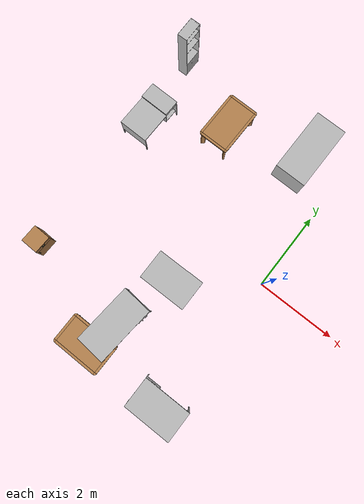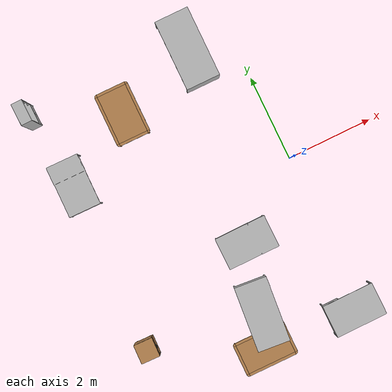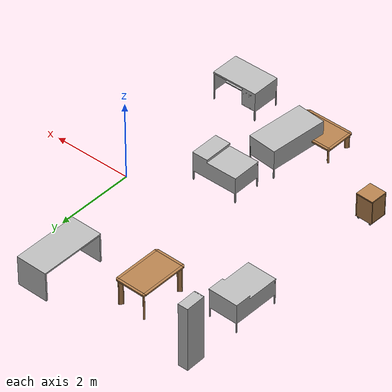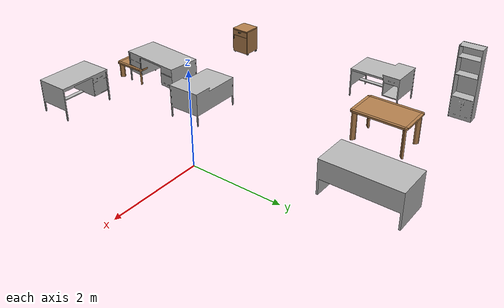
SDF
<sdf version="1.4">
 <world name="default">
  <model name="kitchen_lowtable_1">
   <link name="link">
    <inertial>
     <mass>10</mass>
     <inertia><ixx>1</ixx><ixy>0</ixy><ixz>0</ixz><iyy>1</iyy><iyz>0</iyz><izz>1</izz></inertia>
    </inertial>
    <visual name="center_board">
     <pose>0 0 0.38 0 -0 0</pose>
     <geometry><box><size>0.68 1.13 0.04</size></box></geometry>
     <material>
      <script><uri>model://base_materials/wood/scripts/wood.material</uri><name>base_materials/wood</name></script>
     </material>
    </visual>
    <collision name="collision_center_board">
     <pose>0 0 0.38 0 -0 0</pose>
     <geometry><box><size>0.68 1.13 0.04</size></box></geometry>
    </collision>
    <visual name="front_board">
     <pose>0.37 0 0.38 0 -0 0</pose>
     <geometry><box><size>0.06 1.13 0.04</size></box></geometry>
     <material>
      <script><uri>model://base_materials/wood/scripts/wood.material</uri><name>base_materials/wood</name></script>
     </material>
    </visual>
    <collision name="collision_front_board">
     <pose>0.37 0 0.38 0 -0 0</pose>
     <geometry><box><size>0.06 1.13 0.04</size></box></geometry>
    </collision>
    <visual name="back_board">
     <pose>-0.37 0 0.38 0 -0 0</pose>
     <geometry><box><size>0.06 1.13 0.04</size></box></geometry>
     <material>
      <script><uri>model://base_materials/wood/scripts/wood.material</uri><name>base_materials/wood</name></script>
     </material>
    </visual>
    <collision name="collision_back_board">
     <pose>-0.37 0 0.38 0 -0 0</pose>
     <geometry><box><size>0.06 1.13 0.04</size></box></geometry>
    </collision>
    <visual name="right_board">
     <pose>0 0.595 0.38 0 -0 0</pose>
     <geometry><box><size>0.68 0.06 0.04</size></box></geometry>
     <material>
      <script><uri>model://base_materials/wood/scripts/wood.material</uri><name>base_materials/wood</name></script>
     </material>
    </visual>
    <collision name="collision_right_board">
     <pose>0 0.595 0.38 0 -0 0</pose>
     <geometry><box><size>0.68 0.06 0.04</size></box></geometry>
    </collision>
    <visual name="left_board">
     <pose>0 -0.595 0.38 0 -0 0</pose>
     <geometry><box><size>0.68 0.06 0.04</size></box></geometry>
     <material>
      <script><uri>model://base_materials/wood/scripts/wood.material</uri><name>base_materials/wood</name></script>
     </material>
    </visual>
    <collision name="collision_left_board">
     <pose>0 -0.595 0.38 0 -0 0</pose>
     <geometry><box><size>0.68 0.06 0.04</size></box></geometry>
    </collision>
    <visual name="front_right_corner_board">
     <pose>0.34 0.565 0.38 0 -0 0</pose>
     <geometry><cylinder><radius>0.06</radius><length>0.039</length></cylinder></geometry>
     <material>
      <script><uri>model://base_materials/wood/scripts/wood.material</uri><name>base_materials/wood</name></script>
     </material>
    </visual>
    <collision name="collision_front_right_corner_board">
     <pose>0.34 0.565 0.38 0 -0 0</pose>
     <geometry><cylinder><radius>0.06</radius><length>0.039</length></cylinder></geometry>
    </collision>
    <visual name="front_left_corner_board">
     <pose>0.34 -0.565 0.38 0 -0 0</pose>
     <geometry><cylinder><radius>0.06</radius><length>0.039</length></cylinder></geometry>
     <material>
      <script><uri>model://base_materials/wood/scripts/wood.material</uri><name>base_materials/wood</name></script>
     </material>
    </visual>
    <collision name="collision_front_left_corner_board">
     <pose>0.34 -0.565 0.38 0 -0 0</pose>
     <geometry><cylinder><radius>0.06</radius><length>0.039</length></cylinder></geometry>
    </collision>
    <visual name="front_back_right_corner_board">
     <pose>-0.34 0.565 0.38 0 -0 0</pose>
     <geometry><cylinder><radius>0.06</radius><length>0.039</length></cylinder></geometry>
     <material>
      <script><uri>model://base_materials/wood/scripts/wood.material</uri><name>base_materials/wood</name></script>
     </material>
    </visual>
    <collision name="collision_back_right_corner_board">
     <pose>-0.34 0.565 0.38 0 -0 0</pose>
     <geometry><cylinder><radius>0.06</radius><length>0.039</length></cylinder></geometry>
    </collision>
    <visual name="front_back_left_corner_board">
     <pose>-0.34 -0.565 0.38 0 -0 0</pose>
     <geometry><cylinder><radius>0.06</radius><length>0.039</length></cylinder></geometry>
     <material>
      <script><uri>model://base_materials/wood/scripts/wood.material</uri><name>base_materials/wood</name></script>
     </material>
    </visual>
    <collision name="collision_back_left_corner_board">
     <pose>-0.34 -0.565 0.38 0 -0 0</pose>
     <geometry><cylinder><radius>0.06</radius><length>0.039</length></cylinder></geometry>
    </collision>
    <visual name="front_left_corner_frame1">
     <pose>0.345858 -0.57086 0.18 0 -0 0</pose>
     <geometry><cylinder><radius>0.02</radius><length>0.36</length></cylinder></geometry>
     <material>
      <script><uri>model://base_materials/wood/scripts/wood.material</uri><name>base_materials/wood</name></script>
     </material>
    </visual>
    <collision name="collision_front_left_corner_frame1">
     <pose>0.345858 -0.57086 0.18 0 -0 0</pose>
     <geometry><cylinder><radius>0.02</radius><length>0.36</length></cylinder></geometry>
    </collision>
    <visual name="front_left_corner_frame2">
     <pose>0.317574 -0.54257 0.18 0 -0 0.7854</pose>
     <geometry><box><size>0.04 0.08 0.36</size></box></geometry>
     <material>
      <script><uri>model://base_materials/wood/scripts/wood.material</uri><name>base_materials/wood</name></script>
     </material>
    </visual>
    <collision name="collision_front_left_corner_frame2">
     <pose>0.317574 -0.54257 0.18 0 -0 0.7854</pose>
     <geometry><box><size>0.04 0.08 0.36</size></box></geometry>
    </collision>
    <visual name="front_left_corner_frame3">
     <pose>0.289289 -0.51429 0.18 0 -0 0</pose>
     <geometry><cylinder><radius>0.02</radius><length>0.36</length></cylinder></geometry>
     <material>
      <script><uri>model://base_materials/wood/scripts/wood.material</uri><name>base_materials/wood</name></script>
     </material>
    </visual>
    <collision name="collision_front_left_corner_frame3">
     <pose>0.289289 -0.51429 0.18 0 -0 0</pose>
     <geometry><cylinder><radius>0.02</radius><length>0.36</length></cylinder></geometry>
    </collision>
    <visual name="front_right_corner_frame1">
     <pose>0.345858 0.57086 0.18 0 -0 0</pose>
     <geometry><cylinder><radius>0.02</radius><length>0.36</length></cylinder></geometry>
     <material>
      <script><uri>model://base_materials/wood/scripts/wood.material</uri><name>base_materials/wood</name></script>
     </material>
    </visual>
    <collision name="collision_front_right_corner_frame1">
     <pose>0.345858 0.57086 0.18 0 -0 0</pose>
     <geometry><cylinder><radius>0.02</radius><length>0.36</length></cylinder></geometry>
    </collision>
    <visual name="front_right_corner_frame2">
     <pose>0.317574 0.54257 0.18 0 0 -0.7854</pose>
     <geometry><box><size>0.04 0.08 0.36</size></box></geometry>
     <material>
      <script><uri>model://base_materials/wood/scripts/wood.material</uri><name>base_materials/wood</name></script>
     </material>
    </visual>
    <collision name="collision_front_right_corner_frame2">
     <pose>0.317574 0.54257 0.18 0 0 -0.7854</pose>
     <geometry><box><size>0.04 0.08 0.36</size></box></geometry>
    </collision>
    <visual name="front_right_corner_frame3">
     <pose>0.289289 0.51429 0.18 0 -0 0</pose>
     <geometry><cylinder><radius>0.02</radius><length>0.36</length></cylinder></geometry>
     <material>
      <script><uri>model://base_materials/wood/scripts/wood.material</uri><name>base_materials/wood</name></script>
     </material>
    </visual>
    <collision name="collision_front_right_corner_frame3">
     <pose>0.289289 0.51429 0.18 0 -0 0</pose>
     <geometry><cylinder><radius>0.02</radius><length>0.36</length></cylinder></geometry>
    </collision>
    <visual name="back_left_corner_frame1">
     <pose>-0.345858 -0.57086 0.18 0 -0 0</pose>
     <geometry><cylinder><radius>0.02</radius><length>0.36</length></cylinder></geometry>
     <material>
      <script><uri>model://base_materials/wood/scripts/wood.material</uri><name>base_materials/wood</name></script>
     </material>
    </visual>
    <collision name="collision_back_left_corner_frame1">
     <pose>-0.345858 -0.57086 0.18 0 -0 0</pose>
     <geometry><cylinder><radius>0.02</radius><length>0.36</length></cylinder></geometry>
    </collision>
    <visual name="back_left_corner_frame2">
     <pose>-0.317574 -0.54257 0.18 0 0 -0.7854</pose>
     <geometry><box><size>0.04 0.08 0.36</size></box></geometry>
     <material>
      <script><uri>model://base_materials/wood/scripts/wood.material</uri><name>base_materials/wood</name></script>
     </material>
    </visual>
    <collision name="collision_back_left_corner_frame2">
     <pose>-0.317574 -0.54257 0.18 0 0 -0.7854</pose>
     <geometry><box><size>0.04 0.08 0.36</size></box></geometry>
    </collision>
    <visual name="back_left_corner_frame3">
     <pose>-0.289289 -0.51429 0.18 0 -0 0</pose>
     <geometry><cylinder><radius>0.02</radius><length>0.36</length></cylinder></geometry>
     <material>
      <script><uri>model://base_materials/wood/scripts/wood.material</uri><name>base_materials/wood</name></script>
     </material>
    </visual>
    <collision name="collision_back_left_corner_frame3">
     <pose>-0.289289 -0.51429 0.18 0 -0 0</pose>
     <geometry><cylinder><radius>0.02</radius><length>0.36</length></cylinder></geometry>
    </collision>
    <visual name="back_right_corner_frame1">
     <pose>-0.345858 0.57086 0.18 0 -0 0</pose>
     <geometry><cylinder><radius>0.02</radius><length>0.36</length></cylinder></geometry>
     <material>
      <script><uri>model://base_materials/wood/scripts/wood.material</uri><name>base_materials/wood</name></script>
     </material>
    </visual>
    <collision name="collision_back_right_corner_frame1">
     <pose>-0.345858 0.57086 0.18 0 -0 0</pose>
     <geometry><cylinder><radius>0.02</radius><length>0.36</length></cylinder></geometry>
    </collision>
    <visual name="back_right_corner_frame2">
     <pose>-0.317574 0.54257 0.18 0 -0 0.7854</pose>
     <geometry><box><size>0.04 0.08 0.36</size></box></geometry>
     <material>
      <script><uri>model://base_materials/wood/scripts/wood.material</uri><name>base_materials/wood</name></script>
     </material>
    </visual>
    <collision name="collision_back_right_corner_frame2">
     <pose>-0.317574 0.54257 0.18 0 -0 0.7854</pose>
     <geometry><box><size>0.04 0.08 0.36</size></box></geometry>
    </collision>
    <visual name="back_right_corner_frame3">
     <pose>-0.289289 0.51429 0.18 0 -0 0</pose>
     <geometry><cylinder><radius>0.02</radius><length>0.36</length></cylinder></geometry>
     <material>
      <script><uri>model://base_materials/wood/scripts/wood.material</uri><name>base_materials/wood</name></script>
     </material>
    </visual>
    <collision name="collision_back_right_corner_frame3">
     <pose>-0.289289 0.51429 0.18 0 -0 0</pose>
     <geometry><cylinder><radius>0.02</radius><length>0.36</length></cylinder></geometry>
    </collision>
    <velocity_decay><linear>0</linear><angular>0</angular></velocity_decay>
   </link>
   <static>1</static>
   <pose>-2.36725 -3.58152 0 0 0 -1.5766</pose>
  </model>
  <model name="wagon_1">
   <link name="link">
    <inertial>
     <mass>10</mass>
     <inertia><ixx>1</ixx><ixy>0</ixy><ixz>0</ixz><iyy>1</iyy><iyz>0</iyz><izz>1</izz></inertia>
    </inertial>
    <visual name="left_board">
     <pose>-0.2325 0.01 0.345 0 -0 0</pose>
     <geometry><box><size>0.415 0.02 0.59</size></box></geometry>
     <material>
      <script><uri>model://base_materials/wood/scripts/wood.material</uri><name>base_materials/wood</name></script>
     </material>
    </visual>
    <collision name="collision_left_board">
     <pose>-0.2325 0.01 0.345 0 -0 0</pose>
     <geometry><box><size>0.415 0.02 0.59</size></box></geometry>
    </collision>
    <visual name="right_board">
     <pose>-0.2325 0.4325 0.345 0 -0 0</pose>
     <geometry><box><size>0.415 0.02 0.59</size></box></geometry>
     <material>
      <script><uri>model://base_materials/wood/scripts/wood.material</uri><name>base_materials/wood</name></script>
     </material>
    </visual>
    <collision name="collision_right_board">
     <pose>-0.2325 0.4325 0.345 0 -0 0</pose>
     <geometry><box><size>0.415 0.02 0.59</size></box></geometry>
    </collision>
    <visual name="top_board">
     <pose>-0.22 0.2225 0.655 0 -0 0</pose>
     <geometry><box><size>0.44 0.445 0.03</size></box></geometry>
     <material>
      <script><uri>model://base_materials/wood/scripts/wood.material</uri><name>base_materials/wood</name></script>
     </material>
    </visual>
    <collision name="collision_top_board">
     <pose>-0.22 0.2225 0.655 0 -0 0</pose>
     <geometry><box><size>0.44 0.445 0.03</size></box></geometry>
    </collision>
    <visual name="back_board">
     <pose>-0.425 0.2225 0.345 0 -0 0</pose>
     <geometry><box><size>0.02 0.405 0.59</size></box></geometry>
     <material>
      <script><uri>model://base_materials/wood/scripts/wood.material</uri><name>base_materials/wood</name></script>
     </material>
    </visual>
    <collision name="collision_back_board">
     <pose>-0.425 0.2225 0.345 0 -0 0</pose>
     <geometry><box><size>0.02 0.405 0.59</size></box></geometry>
    </collision>
    <visual name="bottom_board">
     <pose>-0.2325 0.2225 0.06 0 -0 0</pose>
     <geometry><box><size>0.415 0.405 0.02</size></box></geometry>
     <material>
      <script><uri>model://base_materials/wood/scripts/wood.material</uri><name>base_materials/wood</name></script>
     </material>
    </visual>
    <collision name="collision_bottom_board">
     <pose>-0.2325 0.2225 0.06 0 -0 0</pose>
     <geometry><box><size>0.415 0.405 0.02</size></box></geometry>
    </collision>
    <visual name="1st_drawer">
     <pose>-0.0125 0.2225 0.57 0 -0 0</pose>
     <geometry><box><size>0.025 0.445 0.14</size></box></geometry>
     <material>
      <script><uri>model://base_materials/wood/scripts/wood.material</uri><name>base_materials/wood</name></script>
     </material>
    </visual>
    <collision name="collision_1st_drawer">
     <pose>-0.0125 0.2225 0.57 0 -0 0</pose>
     <geometry><box><size>0.025 0.445 0.14</size></box></geometry>
    </collision>
    <visual name="1st_drawer_handle_l1">
     <pose>0.0115 0.1895 0.6 3.14159 1.57079 3.14159</pose>
     <geometry><cylinder><radius>0.007</radius><length>0.023</length></cylinder></geometry>
     <material>
      <ambient>0.18431 0.3098 0.3098 1</ambient>
      <diffuse>0.18431 0.3098 0.3098 1</diffuse>
      <specular>0.1 0.1 0.1 1</specular>
     </material>
    </visual>
    <collision name="collision_1st_drawer_handle_l1">
     <pose>0.0115 0.1895 0.6 3.14159 1.57079 3.14159</pose>
     <geometry><cylinder><radius>0.007</radius><length>0.023</length></cylinder></geometry>
    </collision>
    <visual name="1st_drawer_handle_l2">
     <pose>0.023 0.1895 0.6 0 -0 0</pose>
     <geometry><sphere><radius>0.007</radius></sphere></geometry>
     <material>
      <ambient>0.18431 0.3098 0.3098 1</ambient>
      <diffuse>0.18431 0.3098 0.3098 1</diffuse>
      <specular>0.1 0.1 0.1 1</specular>
     </material>
    </visual>
    <collision name="collision_1st_drawer_handle_l2">
     <pose>0.023 0.1895 0.6 0 -0 0</pose>
     <geometry><sphere><radius>0.007</radius></sphere></geometry>
    </collision>
    <visual name="1st_drawer_handle_r1">
     <pose>0.0115 0.2555 0.6 3.14159 1.57079 3.14159</pose>
     <geometry><cylinder><radius>0.007</radius><length>0.023</length></cylinder></geometry>
     <material>
      <ambient>0.18431 0.3098 0.3098 1</ambient>
      <diffuse>0.18431 0.3098 0.3098 1</diffuse>
      <specular>0.1 0.1 0.1 1</specular>
     </material>
    </visual>
    <collision name="collision_1st_drawer_handle_r1">
     <pose>0.0115 0.2555 0.6 3.14159 1.57079 3.14159</pose>
     <geometry><cylinder><radius>0.007</radius><length>0.023</length></cylinder></geometry>
    </collision>
    <visual name="1st_drawer_handle_r2">
     <pose>0.023 0.2555 0.6 0 -0 0</pose>
     <geometry><sphere><radius>0.007</radius></sphere></geometry>
     <material>
      <ambient>0.18431 0.3098 0.3098 1</ambient>
      <diffuse>0.18431 0.3098 0.3098 1</diffuse>
      <specular>0.1 0.1 0.1 1</specular>
     </material>
    </visual>
    <collision name="collision_1st_drawer_handle_r2">
     <pose>0.023 0.2555 0.6 0 -0 0</pose>
     <geometry><sphere><radius>0.007</radius></sphere></geometry>
    </collision>
    <visual name="1st_drawer_handle_center">
     <pose>0.023 0.2225 0.6 1.5708 -0 0</pose>
     <geometry><cylinder><radius>0.007</radius><length>0.066</length></cylinder></geometry>
     <material>
      <ambient>0.18431 0.3098 0.3098 1</ambient>
      <diffuse>0.18431 0.3098 0.3098 1</diffuse>
      <specular>0.1 0.1 0.1 1</specular>
     </material>
    </visual>
    <collision name="collision_1st_drawer_handle_center">
     <pose>0.023 0.2225 0.6 1.5708 -0 0</pose>
     <geometry><cylinder><radius>0.007</radius><length>0.066</length></cylinder></geometry>
    </collision>
    <visual name="2nd_drawer">
     <pose>-0.0125 0.2225 0.275 0 -0 0</pose>
     <geometry><box><size>0.025 0.445 0.45</size></box></geometry>
     <material>
      <script><uri>model://base_materials/wood/scripts/wood.material</uri><name>base_materials/wood</name></script>
     </material>
    </visual>
    <collision name="collision_2nd_drawer">
     <pose>-0.0125 0.2225 0.275 0 -0 0</pose>
     <geometry><box><size>0.025 0.445 0.45</size></box></geometry>
    </collision>
    <visual name="2nd_drawer_handle_top1">
     <pose>0.0115 0.04 0.47 3.14159 1.57079 3.14159</pose>
     <geometry><cylinder><radius>0.007</radius><length>0.023</length></cylinder></geometry>
     <material>
      <ambient>0.18431 0.3098 0.3098 1</ambient>
      <diffuse>0.18431 0.3098 0.3098 1</diffuse>
      <specular>0.1 0.1 0.1 1</specular>
     </material>
    </visual>
    <collision name="collision_2nd_drawer_handle_top1">
     <pose>0.0115 0.04 0.47 3.14159 1.57079 3.14159</pose>
     <geometry><cylinder><radius>0.007</radius><length>0.023</length></cylinder></geometry>
    </collision>
    <visual name="2nd_drawer_handle_top2">
     <pose>0.023 0.04 0.47 0 -0 0</pose>
     <geometry><sphere><radius>0.007</radius></sphere></geometry>
     <material>
      <ambient>0.18431 0.3098 0.3098 1</ambient>
      <diffuse>0.18431 0.3098 0.3098 1</diffuse>
      <specular>0.1 0.1 0.1 1</specular>
     </material>
    </visual>
    <collision name="2nd_drawer_handle_top2">
     <pose>0.023 0.04 0.47 0 -0 0</pose>
     <geometry><sphere><radius>0.007</radius></sphere></geometry>
    </collision>
    <visual name="2nd_drawer_handle_bottom1">
     <pose>0.0115 0.04 0.404 3.14159 1.57079 3.14159</pose>
     <geometry><cylinder><radius>0.007</radius><length>0.023</length></cylinder></geometry>
     <material>
      <ambient>0.18431 0.3098 0.3098 1</ambient>
      <diffuse>0.18431 0.3098 0.3098 1</diffuse>
      <specular>0.1 0.1 0.1 1</specular>
     </material>
    </visual>
    <collision name="collision_2nd_drawer_handle_bottom1">
     <pose>0.0115 0.04 0.404 3.14159 1.57079 3.14159</pose>
     <geometry><cylinder><radius>0.007</radius><length>0.023</length></cylinder></geometry>
    </collision>
    <visual name="2nd_drawer_handle_bottom2">
     <pose>0.023 0.04 0.404 0 -0 0</pose>
     <geometry><sphere><radius>0.007</radius></sphere></geometry>
     <material>
      <ambient>0.18431 0.3098 0.3098 1</ambient>
      <diffuse>0.18431 0.3098 0.3098 1</diffuse>
      <specular>0.1 0.1 0.1 1</specular>
     </material>
    </visual>
    <collision name="2nd_drawer_handle_bottom2">
     <pose>0.023 0.04 0.404 0 -0 0</pose>
     <geometry><sphere><radius>0.007</radius></sphere></geometry>
    </collision>
    <visual name="2nd_drawer_handle_center">
     <pose>0.023 0.04 0.437 0 -0 0</pose>
     <geometry><cylinder><radius>0.007</radius><length>0.066</length></cylinder></geometry>
     <material>
      <ambient>0.18431 0.3098 0.3098 1</ambient>
      <diffuse>0.18431 0.3098 0.3098 1</diffuse>
      <specular>0.1 0.1 0.1 1</specular>
     </material>
    </visual>
    <collision name="collision_2nd_drawer_handle_center">
     <pose>0.023 0.04 0.437 0 -0 0</pose>
     <geometry><cylinder><radius>0.007</radius><length>0.066</length></cylinder></geometry>
    </collision>
    <visual name="left_front_caster">
     <pose>-0.07 0.025 0.025 3.14159 1.57079 3.14159</pose>
     <geometry><cylinder><radius>0.025</radius><length>0.035</length></cylinder></geometry>
     <material><script><name>Gazebo/Black</name><uri>__default__</uri></script></material>
    </visual>
    <collision name="collision_left_front_caster">
     <pose>-0.07 0.025 0.025 3.14159 1.57079 3.14159</pose>
     <geometry><cylinder><radius>0.025</radius><length>0.035</length></cylinder></geometry>
    </collision>
    <visual name="right_front_caster">
     <pose>-0.07 0.42 0.025 3.14159 1.57079 3.14159</pose>
     <geometry><cylinder><radius>0.025</radius><length>0.035</length></cylinder></geometry>
     <material><script><name>Gazebo/Black</name><uri>__default__</uri></script></material>
    </visual>
    <collision name="collision_right_front_caster">
     <pose>-0.07 0.42 0.025 3.14159 1.57079 3.14159</pose>
     <geometry><cylinder><radius>0.025</radius><length>0.035</length></cylinder></geometry>
    </collision>
    <visual name="left_back_caster">
     <pose>-0.39 0.025 0.025 3.14159 1.57079 3.14159</pose>
     <geometry><cylinder><radius>0.025</radius><length>0.035</length></cylinder></geometry>
     <material><script><name>Gazebo/Black</name><uri>__default__</uri></script></material>
    </visual>
    <collision name="collision_left_back_caster">
     <pose>-0.39 0.025 0.025 3.14159 1.57079 3.14159</pose>
     <geometry><cylinder><radius>0.025</radius><length>0.035</length></cylinder></geometry>
    </collision>
    <visual name="right_back_caster">
     <pose>-0.39 0.42 0.025 3.14159 1.57079 3.14159</pose>
     <geometry><cylinder><radius>0.025</radius><length>0.035</length></cylinder></geometry>
     <material><script><name>Gazebo/Black</name><uri>__default__</uri></script></material>
    </visual>
    <collision name="collision_right_back_caster">
     <pose>-0.39 0.42 0.025 3.14159 1.57079 3.14159</pose>
     <geometry><cylinder><radius>0.025</radius><length>0.035</length></cylinder></geometry>
    </collision>
    <velocity_decay><linear>0</linear><angular>0</angular></velocity_decay>
   </link>
   <static>1</static>
   <pose>-4.52394 -2.6741 0 0 0 -0.030032</pose>
  </model>
  <model name="Table_02_1">
   <link name="link_0">
    <inertial>
     <mass>15</mass>
     <inertia>
      <ixx>0.166667</ixx>
      <ixy>0</ixy>
      <ixz>0</ixz>
      <iyy>0.166667</iyy>
      <iyz>0</iyz>
      <izz>0.166667</izz>
     </inertia>
    </inertial>
    <visual name="visual">
     <geometry><mesh><uri>model://BioRoboticsLab/meshes/Table_02.dae</uri><scale>1 1 1</scale></mesh></geometry>
     <material><lighting>1</lighting><shader type="pixel"/></material>
    </visual>
    <collision name="collision">
     <geometry><mesh><uri>model://BioRoboticsLab/meshes/Table_02.dae</uri><scale>1 1 1</scale></mesh></geometry>
     <surface>
      <friction>
       <ode><mu>1</mu><mu2>1</mu2><fdir1>0 0 0</fdir1><slip1>0</slip1><slip2>0</slip2></ode>
       <torsional>
        <coefficient>1</coefficient>
        <patch_radius>0</patch_radius>
        <surface_radius>0</surface_radius>
        <use_patch_radius>1</use_patch_radius>
        <ode><slip>0</slip></ode>
       </torsional>
      </friction>
      <bounce><restitution_coefficient>0</restitution_coefficient><threshold>1e+06</threshold></bounce>
      <contact>
       <collide_without_contact>0</collide_without_contact>
       <collide_without_contact_bitmask>1</collide_without_contact_bitmask>
       <collide_bitmask>1</collide_bitmask>
       <ode>
        <soft_cfm>0</soft_cfm>
        <soft_erp>0.2</soft_erp>
        <kp>1e+13</kp>
        <kd>1</kd>
        <max_vel>0.01</max_vel>
        <min_depth>0</min_depth>
       </ode>
       <bullet>
        <split_impulse>1</split_impulse>
        <split_impulse_penetration_threshold>-0.01</split_impulse_penetration_threshold>
        <soft_cfm>0</soft_cfm>
        <soft_erp>0.2</soft_erp>
        <kp>1e+13</kp>
        <kd>1</kd>
       </bullet>
      </contact>
     </surface>
    </collision>
   </link>
   <static>1</static>
   <pose>-0.964805 3.15155 0 0 -0 1.56608</pose>
  </model>
  <model name="Desk_03_1">
   <link name="link_0">
    <inertial>
     <mass>25</mass>
     <inertia>
      <ixx>0.166667</ixx>
      <ixy>0</ixy>
      <ixz>0</ixz>
      <iyy>0.166667</iyy>
      <iyz>0</iyz>
      <izz>0.166667</izz>
     </inertia>
    </inertial>
    <visual name="visual">
     <geometry><mesh><uri>model://BioRoboticsLab/meshes/Desk_03.dae</uri><scale>1 1 1</scale></mesh></geometry>
     <material><lighting>1</lighting><shader type="pixel"/></material>
    </visual>
    <collision name="collision">
     <geometry><mesh><uri>model://BioRoboticsLab/meshes/Desk_03.dae</uri><scale>1 1 1</scale></mesh></geometry>
     <surface>
      <friction>
       <ode><mu>1</mu><mu2>1</mu2><fdir1>0 0 0</fdir1><slip1>0</slip1><slip2>0</slip2></ode>
       <torsional>
        <coefficient>1</coefficient>
        <patch_radius>0</patch_radius>
        <surface_radius>0</surface_radius>
        <use_patch_radius>1</use_patch_radius>
        <ode><slip>0</slip></ode>
       </torsional>
      </friction>
      <bounce><restitution_coefficient>0</restitution_coefficient><threshold>1e+06</threshold></bounce>
      <contact>
       <collide_without_contact>0</collide_without_contact>
       <collide_without_contact_bitmask>1</collide_without_contact_bitmask>
       <collide_bitmask>1</collide_bitmask>
       <ode>
        <soft_cfm>0</soft_cfm>
        <soft_erp>0.2</soft_erp>
        <kp>1e+13</kp>
        <kd>1</kd>
        <max_vel>0.01</max_vel>
        <min_depth>0</min_depth>
       </ode>
       <bullet>
        <split_impulse>1</split_impulse>
        <split_impulse_penetration_threshold>-0.01</split_impulse_penetration_threshold>
        <soft_cfm>0</soft_cfm>
        <soft_erp>0.2</soft_erp>
        <kp>1e+13</kp>
        <kd>1</kd>
       </bullet>
      </contact>
     </surface>
    </collision>
   </link>
   <static>1</static>
   <pose>-0.233543 -3.62275 0 0 -0 0.004657</pose>
  </model>
  <model name="Desk_01_1">
   <link name="link_0">
    <inertial>
     <mass>35</mass>
     <inertia>
      <ixx>0.166667</ixx>
      <ixy>0</ixy>
      <ixz>0</ixz>
      <iyy>0.166667</iyy>
      <iyz>0</iyz>
      <izz>0.166667</izz>
     </inertia>
    </inertial>
    <visual name="visual">
     <geometry><mesh><uri>model://BioRoboticsLab/meshes/Desk_01.dae</uri><scale>1 1 1</scale></mesh></geometry>
     <material><lighting>1</lighting><shader type="pixel"/></material>
    </visual>
    <collision name="collision">
     <geometry><mesh><uri>model://BioRoboticsLab/meshes/Desk_01.dae</uri><scale>1 1 1</scale></mesh></geometry>
     <surface>
      <friction>
       <ode><mu>1</mu><mu2>1</mu2><fdir1>0 0 0</fdir1><slip1>0</slip1><slip2>0</slip2></ode>
       <torsional>
        <coefficient>1</coefficient>
        <patch_radius>0</patch_radius>
        <surface_radius>0</surface_radius>
        <use_patch_radius>1</use_patch_radius>
        <ode><slip>0</slip></ode>
       </torsional>
      </friction>
      <bounce><restitution_coefficient>0</restitution_coefficient><threshold>1e+06</threshold></bounce>
      <contact>
       <collide_without_contact>0</collide_without_contact>
       <collide_without_contact_bitmask>1</collide_without_contact_bitmask>
       <collide_bitmask>1</collide_bitmask>
       <ode>
        <soft_cfm>0</soft_cfm>
        <soft_erp>0.2</soft_erp>
        <kp>1e+13</kp>
        <kd>1</kd>
        <max_vel>0.01</max_vel>
        <min_depth>0</min_depth>
       </ode>
       <bullet>
        <split_impulse>1</split_impulse>
        <split_impulse_penetration_threshold>-0.01</split_impulse_penetration_threshold>
        <soft_cfm>0</soft_cfm>
        <soft_erp>0.2</soft_erp>
        <kp>1e+13</kp>
        <kd>1</kd>
       </bullet>
      </contact>
     </surface>
    </collision>
   </link>
   <static>1</static>
   <pose>-2.1 -2.82 0 0 0 -1.66</pose>
  </model>
  <model name="Shelf_02_1">
   <link name="link_0">
    <inertial>
     <mass>12</mass>
     <inertia>
      <ixx>0.166667</ixx>
      <ixy>0</ixy>
      <ixz>0</ixz>
      <iyy>0.166667</iyy>
      <iyz>0</iyz>
      <izz>0.166667</izz>
     </inertia>
    </inertial>
    <visual name="visual">
     <geometry><mesh><uri>model://BioRoboticsLab/meshes/Shelf_02.dae</uri><scale>1 1 1</scale></mesh></geometry>
     <material><lighting>1</lighting><shader type="pixel"/></material>
    </visual>
    <collision name="collision">
     <geometry><mesh><uri>model://BioRoboticsLab/meshes/Shelf_02.dae</uri><scale>1 1 1</scale></mesh></geometry>
     <surface>
      <friction>
       <ode><mu>1</mu><mu2>1</mu2><fdir1>0 0 0</fdir1><slip1>0</slip1><slip2>0</slip2></ode>
       <torsional>
        <coefficient>1</coefficient>
        <patch_radius>0</patch_radius>
        <surface_radius>0</surface_radius>
        <use_patch_radius>1</use_patch_radius>
        <ode><slip>0</slip></ode>
       </torsional>
      </friction>
      <bounce><restitution_coefficient>0</restitution_coefficient><threshold>1e+06</threshold></bounce>
      <contact>
       <collide_without_contact>0</collide_without_contact>
       <collide_without_contact_bitmask>1</collide_without_contact_bitmask>
       <collide_bitmask>1</collide_bitmask>
       <ode>
        <soft_cfm>0</soft_cfm>
        <soft_erp>0.2</soft_erp>
        <kp>1e+13</kp>
        <kd>1</kd>
        <max_vel>0.01</max_vel>
        <min_depth>0</min_depth>
       </ode>
       <bullet>
        <split_impulse>1</split_impulse>
        <split_impulse_penetration_threshold>-0.01</split_impulse_penetration_threshold>
        <soft_cfm>0</soft_cfm>
        <soft_erp>0.2</soft_erp>
        <kp>1e+13</kp>
        <kd>1</kd>
       </bullet>
      </contact>
     </surface>
    </collision>
   </link>
   <static>1</static>
   <pose>-4.82525 3.34686 0 0 0 -1.55713</pose>
  </model>
  <model name="Desk_02_1">
   <link name="link_0">
    <inertial>
     <mass>19</mass>
     <inertia>
      <ixx>0.166667</ixx>
      <ixy>0</ixy>
      <ixz>0</ixz>
      <iyy>0.166667</iyy>
      <iyz>0</iyz>
      <izz>0.166667</izz>
     </inertia>
    </inertial>
    <visual name="visual">
     <geometry><mesh><uri>model://BioRoboticsLab/meshes/Desk_02.dae</uri><scale>1 1 1</scale></mesh></geometry>
     <material><lighting>1</lighting><shader type="pixel"/></material>
    </visual>
    <collision name="collision">
     <geometry><mesh><uri>model://BioRoboticsLab/meshes/Desk_02.dae</uri><scale>1 1 1</scale></mesh></geometry>
     <surface>
      <friction>
       <ode><mu>1</mu><mu2>1</mu2><fdir1>0 0 0</fdir1><slip1>0</slip1><slip2>0</slip2></ode>
       <torsional>
        <coefficient>1</coefficient>
        <patch_radius>0</patch_radius>
        <surface_radius>0</surface_radius>
        <use_patch_radius>1</use_patch_radius>
        <ode><slip>0</slip></ode>
       </torsional>
      </friction>
      <bounce><restitution_coefficient>0</restitution_coefficient><threshold>1e+06</threshold></bounce>
      <contact>
       <collide_without_contact>0</collide_without_contact>
       <collide_without_contact_bitmask>1</collide_without_contact_bitmask>
       <collide_bitmask>1</collide_bitmask>
       <ode>
        <soft_cfm>0</soft_cfm>
        <soft_erp>0.2</soft_erp>
        <kp>1e+13</kp>
        <kd>1</kd>
        <max_vel>0.01</max_vel>
        <min_depth>0</min_depth>
       </ode>
       <bullet>
        <split_impulse>1</split_impulse>
        <split_impulse_penetration_threshold>-0.01</split_impulse_penetration_threshold>
        <soft_cfm>0</soft_cfm>
        <soft_erp>0.2</soft_erp>
        <kp>1e+13</kp>
        <kd>1</kd>
       </bullet>
      </contact>
     </surface>
    </collision>
   </link>
   <static>1</static>
   <pose>-4.60194 1.67796 0 0 0 -1.58401</pose>
  </model>
  <model name="Desk_02_2">
   <link name="link_0">
    <inertial>
     <mass>19</mass>
     <inertia>
      <ixx>0.166667</ixx>
      <ixy>0</ixy>
      <ixz>0</ixz>
      <iyy>0.166667</iyy>
      <iyz>0</iyz>
      <izz>0.166667</izz>
     </inertia>
    </inertial>
    <visual name="visual">
     <geometry><mesh><uri>model://BioRoboticsLab/meshes/Desk_02.dae</uri><scale>1 1 1</scale></mesh></geometry>
     <material><lighting>1</lighting><shader type="pixel"/></material>
    </visual>
    <collision name="collision">
     <geometry><mesh><uri>model://BioRoboticsLab/meshes/Desk_02.dae</uri><scale>1 1 1</scale></mesh></geometry>
     <surface>
      <friction>
       <ode><mu>1</mu><mu2>1</mu2><fdir1>0 0 0</fdir1><slip1>0</slip1><slip2>0</slip2></ode>
       <torsional>
        <coefficient>1</coefficient>
        <patch_radius>0</patch_radius>
        <surface_radius>0</surface_radius>
        <use_patch_radius>1</use_patch_radius>
        <ode><slip>0</slip></ode>
       </torsional>
      </friction>
      <bounce><restitution_coefficient>0</restitution_coefficient><threshold>1e+06</threshold></bounce>
      <contact>
       <collide_without_contact>0</collide_without_contact>
       <collide_without_contact_bitmask>1</collide_without_contact_bitmask>
       <collide_bitmask>1</collide_bitmask>
       <ode>
        <soft_cfm>0</soft_cfm>
        <soft_erp>0.2</soft_erp>
        <kp>1e+13</kp>
        <kd>1</kd>
        <max_vel>0.01</max_vel>
        <min_depth>0</min_depth>
       </ode>
       <bullet>
        <split_impulse>1</split_impulse>
        <split_impulse_penetration_threshold>-0.01</split_impulse_penetration_threshold>
        <soft_cfm>0</soft_cfm>
        <soft_erp>0.2</soft_erp>
        <kp>1e+13</kp>
        <kd>1</kd>
       </bullet>
      </contact>
     </surface>
    </collision>
   </link>
   <static>1</static>
   <pose>-1.56343 -1.26126 0 0 -0 -3.13533</pose>
  </model>
  <model name="kitchen_table_2">
   <link name="link">
    <inertial>
     <mass>10</mass>
     <inertia><ixx>1</ixx><ixy>0</ixy><ixz>0</ixz><iyy>1</iyy><iyz>0</iyz><izz>1</izz></inertia>
    </inertial>
    <visual name="center_board">
     <pose>0 0 0.68 0 -0 0</pose>
     <geometry><box><size>0.68 1.13 0.04</size></box></geometry>
     <material>
      <script><uri>model://base_materials/wood/scripts/wood.material</uri><name>base_materials/wood</name></script>
     </material>
    </visual>
    <collision name="collision_center_board">
     <pose>0 0 0.68 0 -0 0</pose>
     <geometry><box><size>0.68 1.13 0.04</size></box></geometry>
    </collision>
    <visual name="front_board">
     <pose>0.37 0 0.68 0 -0 0</pose>
     <geometry><box><size>0.06 1.13 0.04</size></box></geometry>
     <material>
      <script><uri>model://base_materials/wood/scripts/wood.material</uri><name>base_materials/wood</name></script>
     </material>
    </visual>
    <collision name="collision_front_board">
     <pose>0.37 0 0.68 0 -0 0</pose>
     <geometry><box><size>0.06 1.13 0.04</size></box></geometry>
    </collision>
    <visual name="back_board">
     <pose>-0.37 0 0.68 0 -0 0</pose>
     <geometry><box><size>0.06 1.13 0.04</size></box></geometry>
     <material>
      <script><uri>model://base_materials/wood/scripts/wood.material</uri><name>base_materials/wood</name></script>
     </material>
    </visual>
    <collision name="collision_back_board">
     <pose>-0.37 0 0.68 0 -0 0</pose>
     <geometry><box><size>0.06 1.13 0.04</size></box></geometry>
    </collision>
    <visual name="right_board">
     <pose>0 0.595 0.68 0 -0 0</pose>
     <geometry><box><size>0.68 0.06 0.04</size></box></geometry>
     <material>
      <script><uri>model://base_materials/wood/scripts/wood.material</uri><name>base_materials/wood</name></script>
     </material>
    </visual>
    <collision name="collision_right_board">
     <pose>0 0.595 0.68 0 -0 0</pose>
     <geometry><box><size>0.68 0.06 0.04</size></box></geometry>
    </collision>
    <visual name="left_board">
     <pose>0 -0.595 0.68 0 -0 0</pose>
     <geometry><box><size>0.68 0.06 0.04</size></box></geometry>
     <material>
      <script><uri>model://base_materials/wood/scripts/wood.material</uri><name>base_materials/wood</name></script>
     </material>
    </visual>
    <collision name="collision_left_board">
     <pose>0 -0.595 0.68 0 -0 0</pose>
     <geometry><box><size>0.68 0.06 0.04</size></box></geometry>
    </collision>
    <visual name="front_right_corner_board">
     <pose>0.34 0.565 0.68 0 -0 0</pose>
     <geometry><cylinder><radius>0.06</radius><length>0.039</length></cylinder></geometry>
     <material>
      <script><uri>model://base_materials/wood/scripts/wood.material</uri><name>base_materials/wood</name></script>
     </material>
    </visual>
    <collision name="collision_front_right_corner_board">
     <pose>0.34 0.565 0.68 0 -0 0</pose>
     <geometry><cylinder><radius>0.06</radius><length>0.039</length></cylinder></geometry>
    </collision>
    <visual name="front_left_corner_board">
     <pose>0.34 -0.565 0.68 0 -0 0</pose>
     <geometry><cylinder><radius>0.06</radius><length>0.039</length></cylinder></geometry>
     <material>
      <script><uri>model://base_materials/wood/scripts/wood.material</uri><name>base_materials/wood</name></script>
     </material>
    </visual>
    <collision name="collision_front_left_corner_board">
     <pose>0.34 -0.565 0.68 0 -0 0</pose>
     <geometry><cylinder><radius>0.06</radius><length>0.039</length></cylinder></geometry>
    </collision>
    <visual name="front_back_right_corner_board">
     <pose>-0.34 0.565 0.68 0 -0 0</pose>
     <geometry><cylinder><radius>0.06</radius><length>0.039</length></cylinder></geometry>
     <material>
      <script><uri>model://base_materials/wood/scripts/wood.material</uri><name>base_materials/wood</name></script>
     </material>
    </visual>
    <collision name="collision_back_right_corner_board">
     <pose>-0.34 0.565 0.68 0 -0 0</pose>
     <geometry><cylinder><radius>0.06</radius><length>0.039</length></cylinder></geometry>
    </collision>
    <visual name="front_back_left_corner_board">
     <pose>-0.34 -0.565 0.68 0 -0 0</pose>
     <geometry><cylinder><radius>0.06</radius><length>0.039</length></cylinder></geometry>
     <material>
      <script><uri>model://base_materials/wood/scripts/wood.material</uri><name>base_materials/wood</name></script>
     </material>
    </visual>
    <collision name="collision_back_left_corner_board">
     <pose>-0.34 -0.565 0.68 0 -0 0</pose>
     <geometry><cylinder><radius>0.06</radius><length>0.039</length></cylinder></geometry>
    </collision>
    <visual name="front_left_corner_frame1">
     <pose>0.345858 -0.57086 0.33 0 -0 0</pose>
     <geometry><cylinder><radius>0.02</radius><length>0.66</length></cylinder></geometry>
     <material>
      <script><uri>model://base_materials/wood/scripts/wood.material</uri><name>base_materials/wood</name></script>
     </material>
    </visual>
    <collision name="collision_front_left_corner_frame1">
     <pose>0.345858 -0.57086 0.33 0 -0 0</pose>
     <geometry><cylinder><radius>0.02</radius><length>0.66</length></cylinder></geometry>
    </collision>
    <visual name="front_left_corner_frame2">
     <pose>0.317574 -0.54257 0.33 0 -0 0.7854</pose>
     <geometry><box><size>0.04 0.08 0.66</size></box></geometry>
     <material>
      <script><uri>model://base_materials/wood/scripts/wood.material</uri><name>base_materials/wood</name></script>
     </material>
    </visual>
    <collision name="collision_front_left_corner_frame2">
     <pose>0.317574 -0.54257 0.33 0 -0 0.7854</pose>
     <geometry><box><size>0.04 0.08 0.66</size></box></geometry>
    </collision>
    <visual name="front_left_corner_frame3">
     <pose>0.289289 -0.51429 0.33 0 -0 0</pose>
     <geometry><cylinder><radius>0.02</radius><length>0.66</length></cylinder></geometry>
     <material>
      <script><uri>model://base_materials/wood/scripts/wood.material</uri><name>base_materials/wood</name></script>
     </material>
    </visual>
    <collision name="collision_front_left_corner_frame3">
     <pose>0.289289 -0.51429 0.33 0 -0 0</pose>
     <geometry><cylinder><radius>0.02</radius><length>0.66</length></cylinder></geometry>
    </collision>
    <visual name="front_right_corner_frame1">
     <pose>0.345858 0.57086 0.33 0 -0 0</pose>
     <geometry><cylinder><radius>0.02</radius><length>0.66</length></cylinder></geometry>
     <material>
      <script><uri>model://base_materials/wood/scripts/wood.material</uri><name>base_materials/wood</name></script>
     </material>
    </visual>
    <collision name="collision_front_right_corner_frame1">
     <pose>0.345858 0.57086 0.33 0 -0 0</pose>
     <geometry><cylinder><radius>0.02</radius><length>0.66</length></cylinder></geometry>
    </collision>
    <visual name="front_right_corner_frame2">
     <pose>0.317574 0.54257 0.33 0 0 -0.7854</pose>
     <geometry><box><size>0.04 0.08 0.66</size></box></geometry>
     <material>
      <script><uri>model://base_materials/wood/scripts/wood.material</uri><name>base_materials/wood</name></script>
     </material>
    </visual>
    <collision name="collision_front_right_corner_frame2">
     <pose>0.317574 0.54257 0.33 0 0 -0.7854</pose>
     <geometry><box><size>0.04 0.08 0.66</size></box></geometry>
    </collision>
    <visual name="front_right_corner_frame3">
     <pose>0.289289 0.51429 0.33 0 -0 0</pose>
     <geometry><cylinder><radius>0.02</radius><length>0.66</length></cylinder></geometry>
     <material>
      <script><uri>model://base_materials/wood/scripts/wood.material</uri><name>base_materials/wood</name></script>
     </material>
    </visual>
    <collision name="collision_front_right_corner_frame3">
     <pose>0.289289 0.51429 0.33 0 -0 0</pose>
     <geometry><cylinder><radius>0.02</radius><length>0.66</length></cylinder></geometry>
    </collision>
    <visual name="back_left_corner_frame1">
     <pose>-0.345858 -0.57086 0.33 0 -0 0</pose>
     <geometry><cylinder><radius>0.02</radius><length>0.66</length></cylinder></geometry>
     <material>
      <script><uri>model://base_materials/wood/scripts/wood.material</uri><name>base_materials/wood</name></script>
     </material>
    </visual>
    <collision name="collision_back_left_corner_frame1">
     <pose>-0.345858 -0.57086 0.33 0 -0 0</pose>
     <geometry><cylinder><radius>0.02</radius><length>0.66</length></cylinder></geometry>
    </collision>
    <visual name="back_left_corner_frame2">
     <pose>-0.317574 -0.54257 0.33 0 0 -0.7854</pose>
     <geometry><box><size>0.04 0.08 0.66</size></box></geometry>
     <material>
      <script><uri>model://base_materials/wood/scripts/wood.material</uri><name>base_materials/wood</name></script>
     </material>
    </visual>
    <collision name="collision_back_left_corner_frame2">
     <pose>-0.317574 -0.54257 0.33 0 0 -0.7854</pose>
     <geometry><box><size>0.04 0.08 0.66</size></box></geometry>
    </collision>
    <visual name="back_left_corner_frame3">
     <pose>-0.289289 -0.51429 0.33 0 -0 0</pose>
     <geometry><cylinder><radius>0.02</radius><length>0.66</length></cylinder></geometry>
     <material>
      <script><uri>model://base_materials/wood/scripts/wood.material</uri><name>base_materials/wood</name></script>
     </material>
    </visual>
    <collision name="collision_back_left_corner_frame3">
     <pose>-0.289289 -0.51429 0.33 0 -0 0</pose>
     <geometry><cylinder><radius>0.02</radius><length>0.66</length></cylinder></geometry>
    </collision>
    <visual name="back_right_corner_frame1">
     <pose>-0.345858 0.57086 0.33 0 -0 0</pose>
     <geometry><cylinder><radius>0.02</radius><length>0.66</length></cylinder></geometry>
     <material>
      <script><uri>model://base_materials/wood/scripts/wood.material</uri><name>base_materials/wood</name></script>
     </material>
    </visual>
    <collision name="collision_back_right_corner_frame1">
     <pose>-0.345858 0.57086 0.33 0 -0 0</pose>
     <geometry><cylinder><radius>0.02</radius><length>0.66</length></cylinder></geometry>
    </collision>
    <visual name="back_right_corner_frame2">
     <pose>-0.317574 0.54257 0.33 0 -0 0.7854</pose>
     <geometry><box><size>0.04 0.08 0.66</size></box></geometry>
     <material>
      <script><uri>model://base_materials/wood/scripts/wood.material</uri><name>base_materials/wood</name></script>
     </material>
    </visual>
    <collision name="collision_back_right_corner_frame2">
     <pose>-0.317574 0.54257 0.33 0 -0 0.7854</pose>
     <geometry><box><size>0.04 0.08 0.66</size></box></geometry>
    </collision>
    <visual name="back_right_corner_frame3">
     <pose>-0.289289 0.51429 0.33 0 -0 0</pose>
     <geometry><cylinder><radius>0.02</radius><length>0.66</length></cylinder></geometry>
     <material>
      <script><uri>model://base_materials/wood/scripts/wood.material</uri><name>base_materials/wood</name></script>
     </material>
    </visual>
    <collision name="collision_back_right_corner_frame3">
     <pose>-0.289289 0.51429 0.33 0 -0 0</pose>
     <geometry><cylinder><radius>0.02</radius><length>0.66</length></cylinder></geometry>
    </collision>
    <velocity_decay><linear>0</linear><angular>0</angular></velocity_decay>
   </link>
   <static>1</static>
   <pose>-2.94766 2.48047 0 0 -0 3.13491</pose>
  </model>
 </world>
</sdf>
